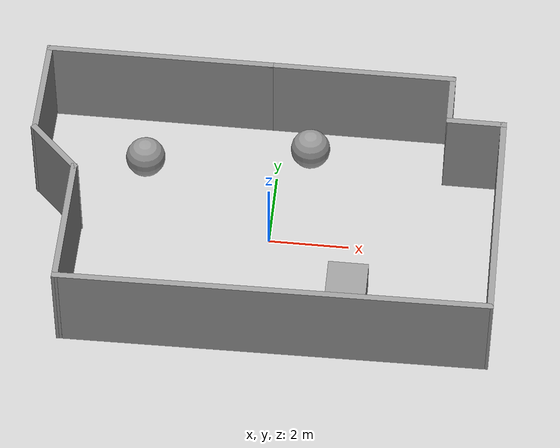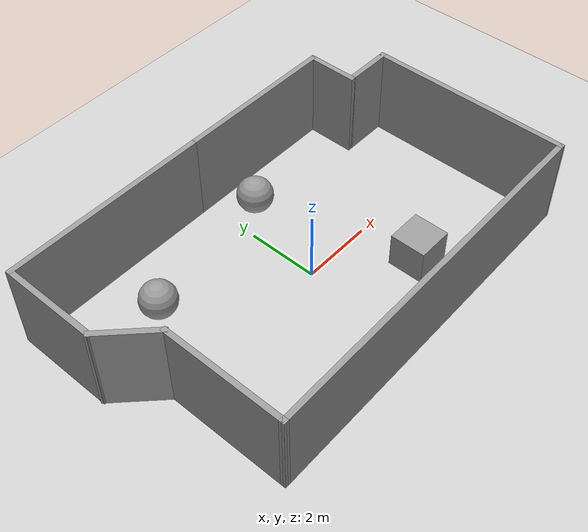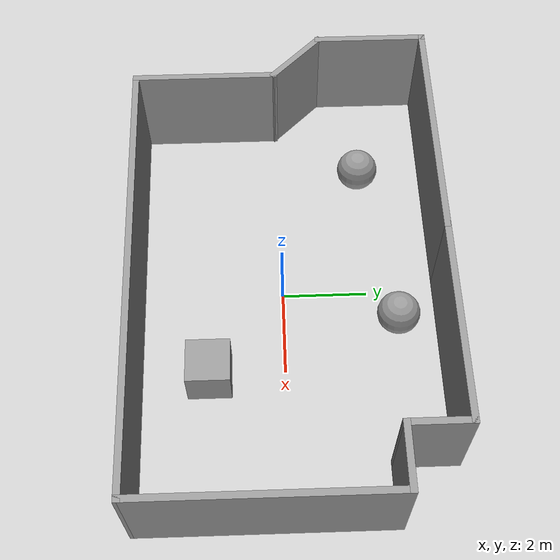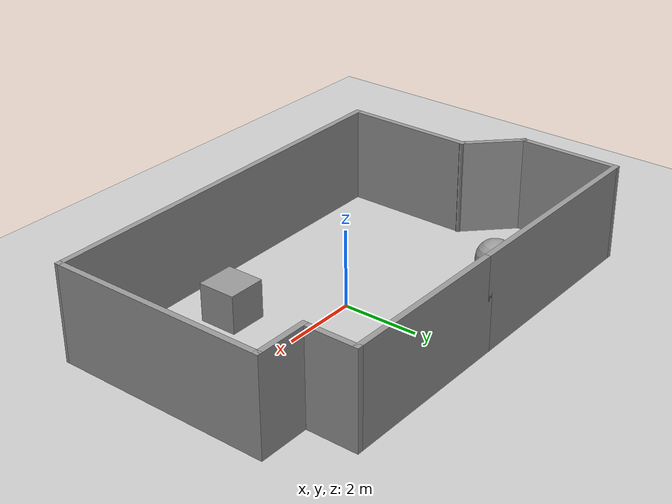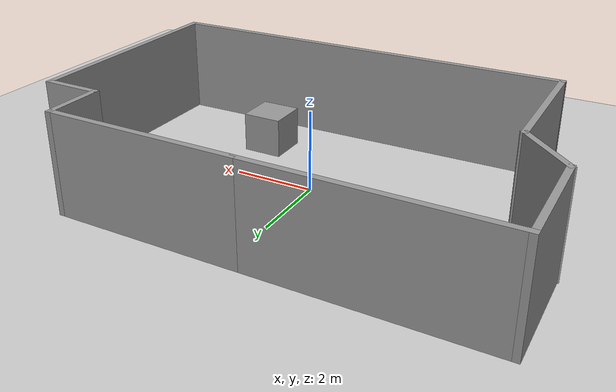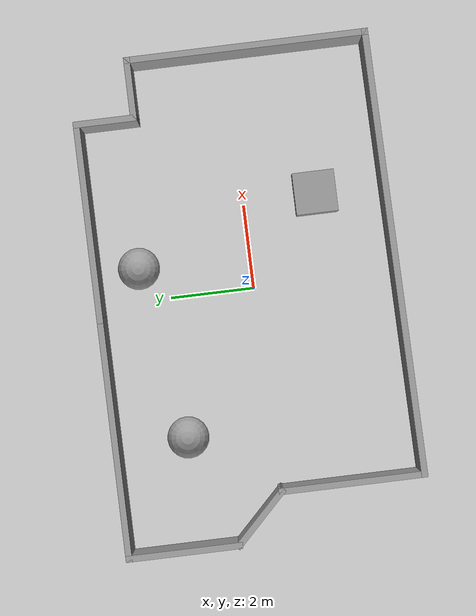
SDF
<sdf version="1.7">
 <world name="default">
  <light name="sun" type="directional">
   <pose>0 0 10 0 -0 0</pose>
   <diffuse>0.8 0.8 0.8 1</diffuse>
   <specular>0.2 0.2 0.2 1</specular>
   <attenuation>
    <range>1000</range>
    <constant>0.9</constant>
    <linear>0.01</linear>
    <quadratic>0.001</quadratic>
   </attenuation>
   <direction>-0.5 0.1 -0.9</direction>
   <spot><inner_angle>0</inner_angle><outer_angle>0</outer_angle><falloff>0</falloff></spot>
  </light>
  <model name="ground_plane">
   <static>1</static>
   <link name="link">
    <collision name="collision">
     <geometry><plane><normal>0 0 1</normal><size>100 100</size></plane></geometry>
     <surface>
      <contact><collide_bitmask>65535</collide_bitmask></contact>
      <friction><ode><mu>100</mu><mu2>50</mu2></ode></friction>
     </surface>
    </collision>
    <visual name="visual">
     <cast_shadows>0</cast_shadows>
     <geometry><plane><normal>0 0 1</normal><size>100 100</size></plane></geometry>
     <material>
      <script><uri>file://media/materials/scripts/gazebo.material</uri><name>Gazebo/Grey</name></script>
     </material>
    </visual>
   </link>
  </model>
  <gravity>0 0 -9.8</gravity>
  <magnetic_field>6e-06 2.3e-05 -4.2e-05</magnetic_field>
  <atmosphere type="adiabatic"/>
  <physics type="ode">
   <max_step_size>0.001</max_step_size>
   <real_time_factor>1</real_time_factor>
   <real_time_update_rate>1000</real_time_update_rate>
  </physics>
  <scene><ambient>0.4 0.4 0.4 1</ambient><background>0.7 0.7 0.7 1</background><shadows>1</shadows></scene>
  <spherical_coordinates>
   <surface_model>EARTH_WGS84</surface_model>
   <latitude_deg>0</latitude_deg>
   <longitude_deg>0</longitude_deg>
   <elevation>0</elevation>
   <heading_deg>0</heading_deg>
  </spherical_coordinates>
  <model name="model_036">
   <pose>-0.179413 0.120027 0 0 -0 0</pose>
   <link name="Wall_0">
    <collision name="Wall_0_Collision">
     <geometry><box><size>3.5 0.15 2.5</size></box></geometry>
     <pose>0 0 1.25 0 -0 0</pose>
    </collision>
    <visual name="Wall_0_Visual">
     <pose>0 0 1.25 0 -0 0</pose>
     <geometry><box><size>3.5 0.15 2.5</size></box></geometry>
     <material>
      <script><uri>file://media/materials/scripts/gazebo.material</uri><name>Gazebo/Grey</name></script>
      <ambient>1 1 1 1</ambient>
     </material>
     <meta><layer>0</layer></meta>
    </visual>
    <pose>-4.62857 -1.86522 0 0 -0 -1.5708</pose>
   </link>
   <link name="Wall_2">
    <collision name="Wall_2_Collision">
     <geometry><box><size>1.75 0.15 2.5</size></box></geometry>
     <pose>0 0 1.25 0 -0 0</pose>
    </collision>
    <visual name="Wall_2_Visual">
     <pose>0 0 1.25 0 -0 0</pose>
     <geometry><box><size>1.75 0.15 2.5</size></box></geometry>
     <material>
      <script><uri>file://media/materials/scripts/gazebo.material</uri><name>Gazebo/Grey</name></script>
      <ambient>1 1 1 1</ambient>
     </material>
     <meta><layer>0</layer></meta>
    </visual>
    <pose>-5.19425 0.37547 0 0 -0 2.35619</pose>
   </link>
   <link name="Wall_3">
    <collision name="Wall_3_Collision">
     <geometry><box><size>2.75 0.15 2.5</size></box></geometry>
     <pose>0 0 1.25 0 -0 0</pose>
    </collision>
    <visual name="Wall_3_Visual">
     <pose>0 0 1.25 0 -0 0</pose>
     <geometry><box><size>2.75 0.15 2.5</size></box></geometry>
     <material>
      <script><uri>file://media/materials/scripts/gazebo.material</uri><name>Gazebo/Grey</name></script>
      <ambient>1 1 1 1</ambient>
     </material>
     <meta><layer>0</layer></meta>
    </visual>
    <pose>-5.75994 2.24116 0 0 -0 1.5708</pose>
   </link>
   <link name="Wall_4">
    <collision name="Wall_4_Collision">
     <geometry><box><size>5.75 0.15 2.5</size></box></geometry>
     <pose>0 0 1.25 0 -0 0</pose>
    </collision>
    <visual name="Wall_4_Visual">
     <pose>0 0 1.25 0 -0 0</pose>
     <geometry><box><size>5.75 0.15 2.5</size></box></geometry>
     <material>
      <script><uri>file://media/materials/scripts/gazebo.material</uri><name>Gazebo/Grey</name></script>
      <ambient>1 1 1 1</ambient>
     </material>
     <meta><layer>0</layer></meta>
    </visual>
    <pose>-2.95994 3.54115 0 0 -0 0</pose>
   </link>
   <link name="Wall_5">
    <collision name="Wall_5_Collision">
     <geometry><box><size>4.75 0.15 2.5</size></box></geometry>
     <pose>0 0 1.25 0 -0 0</pose>
    </collision>
    <visual name="Wall_5_Visual">
     <pose>0 0 1.25 0 -0 0</pose>
     <geometry><box><size>4.75 0.15 2.5</size></box></geometry>
     <material>
      <script><uri>file://media/materials/scripts/gazebo.material</uri><name>Gazebo/Grey</name></script>
      <ambient>1 1 1 1</ambient>
     </material>
     <meta><layer>0</layer></meta>
    </visual>
    <pose>2.14006 3.54115 0 0 -0 0</pose>
   </link>
   <link name="Wall_6">
    <collision name="Wall_6_Collision">
     <geometry><box><size>1.5 0.15 2.5</size></box></geometry>
     <pose>0 0 1.25 0 -0 0</pose>
    </collision>
    <visual name="Wall_6_Visual">
     <pose>0 0 1.25 0 -0 0</pose>
     <geometry><box><size>1.5 0.15 2.5</size></box></geometry>
     <material>
      <script><uri>file://media/materials/scripts/gazebo.material</uri><name>Gazebo/Grey</name></script>
      <ambient>1 1 1 1</ambient>
     </material>
     <meta><layer>0</layer></meta>
    </visual>
    <pose>4.44006 2.86616 0 0 -0 -1.5708</pose>
   </link>
   <link name="Wall_7">
    <collision name="Wall_7_Collision">
     <geometry><box><size>1.5 0.15 2.5</size></box></geometry>
     <pose>0 0 1.25 0 -0 0</pose>
    </collision>
    <visual name="Wall_7_Visual">
     <pose>0 0 1.25 0 -0 0</pose>
     <geometry><box><size>1.5 0.15 2.5</size></box></geometry>
     <material>
      <script><uri>file://media/materials/scripts/gazebo.material</uri><name>Gazebo/Grey</name></script>
      <ambient>1 1 1 1</ambient>
     </material>
     <meta><layer>0</layer></meta>
    </visual>
    <pose>5.11506 2.19116 0 0 -0 0</pose>
   </link>
   <link name="Wall_8">
    <collision name="Wall_8_Collision">
     <geometry><box><size>5.75 0.15 2.5</size></box></geometry>
     <pose>0 0 1.25 0 -0 0</pose>
    </collision>
    <visual name="Wall_8_Visual">
     <pose>0 0 1.25 0 -0 0</pose>
     <geometry><box><size>5.75 0.15 2.5</size></box></geometry>
     <material>
      <script><uri>file://media/materials/scripts/gazebo.material</uri><name>Gazebo/Grey</name></script>
      <ambient>1 1 1 1</ambient>
     </material>
     <meta><layer>0</layer></meta>
    </visual>
    <pose>5.79006 -0.608845 0 0 -0 -1.5708</pose>
   </link>
   <link name="Wall_9">
    <collision name="Wall_9_Collision">
     <geometry><box><size>10.5695 0.15 2.5</size></box></geometry>
     <pose>0 0 1.25 0 -0 0</pose>
    </collision>
    <visual name="Wall_9_Visual">
     <pose>0 0 1.25 0 -0 0</pose>
     <geometry><box><size>10.5695 0.15 2.5</size></box></geometry>
     <material>
      <script><uri>file://media/materials/scripts/gazebo.material</uri><name>Gazebo/Grey</name></script>
      <ambient>1 1 1 1</ambient>
     </material>
     <meta><layer>0</layer></meta>
    </visual>
    <pose>0.580749 -3.47453 0 0 -0 -3.12898</pose>
   </link>
   <static>1</static>
  </model>
  <model name="unit_sphere">
   <pose>-3.34724 1.98277 0.5 0 -0 0</pose>
   <link name="link">
    <inertial>
     <mass>1</mass>
     <inertia><ixx>0.1</ixx><ixy>0</ixy><ixz>0</ixz><iyy>0.1</iyy><iyz>0</iyz><izz>0.1</izz></inertia>
    </inertial>
    <collision name="collision"><geometry><sphere><radius>0.5</radius></sphere></geometry></collision>
    <visual name="visual">
     <geometry><sphere><radius>0.5</radius></sphere></geometry>
     <material>
      <script><name>Gazebo/Grey</name><uri>file://media/materials/scripts/gazebo.material</uri></script>
     </material>
    </visual>
   </link>
  </model>
  <model name="unit_box">
   <pose>2.08672 -1.71964 0.499995 -1e-05 -0 0</pose>
   <link name="link">
    <inertial>
     <mass>1</mass>
     <inertia>
      <ixx>0.166667</ixx>
      <ixy>0</ixy>
      <ixz>0</ixz>
      <iyy>0.166667</iyy>
      <iyz>0</iyz>
      <izz>0.166667</izz>
     </inertia>
    </inertial>
    <collision name="collision"><geometry><box><size>1 1 1</size></box></geometry></collision>
    <visual name="visual">
     <geometry><box><size>1 1 1</size></box></geometry>
     <material>
      <script><name>Gazebo/Grey</name><uri>file://media/materials/scripts/gazebo.material</uri></script>
     </material>
    </visual>
   </link>
  </model>
  <model name="unit_sphere_0">
   <pose>0.791104 2.66924 0.5 0 -0 0</pose>
   <link name="link">
    <inertial>
     <mass>1</mass>
     <inertia><ixx>0.1</ixx><ixy>0</ixy><ixz>0</ixz><iyy>0.1</iyy><iyz>0</iyz><izz>0.1</izz></inertia>
    </inertial>
    <collision name="collision"><geometry><sphere><radius>0.5</radius></sphere></geometry></collision>
    <visual name="visual">
     <geometry><sphere><radius>0.5</radius></sphere></geometry>
     <material>
      <script><name>Gazebo/Grey</name><uri>file://media/materials/scripts/gazebo.material</uri></script>
     </material>
    </visual>
   </link>
  </model>
 </world>
</sdf>
